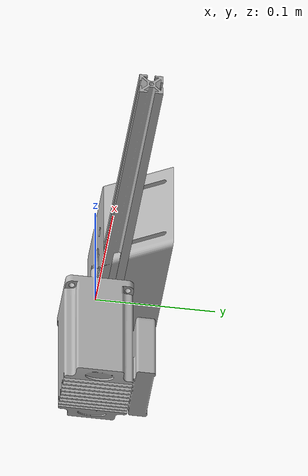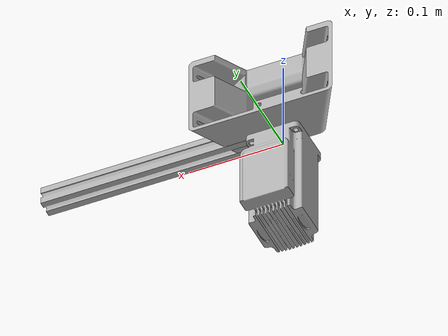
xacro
<?xml version="1.0" ?>
<robot name="ow_bot" xmlns:xacro="http://www.ros.org/wiki/xacro">

<xacro:include filename="$(find ow_bot)/description/materials.xacro" />
<xacro:include filename="$(find ow_bot)/description/ow_bot.trans" />
<xacro:include filename="$(find ow_bot)/description/ow_bot.gazebo" />
<link name="base_link">
  <!--cd -->
  <visual>
    <origin xyz="0 0 10000" rpy="0 0 0"/>
    <geometry>
      <mesh filename="file://$(find ow_bot)/meshes/base_link.stl" scale="0.001 0.001 0.001"/>
    </geometry>
    <material name="silver"/>
  </visual>
  <collision>
    <origin xyz="0 0 1000" rpy="0 0 0"/>
    <geometry>
      <box size="300 300 300"/>
     </geometry>

  </collision>
</link>

<link name="perfil_ts">
  <inertial>
    <origin xyz="-3.552713678800501e-17 -4.759991029112953e-07 -0.010000000278323328" rpy="0 0 0"/>
    <mass value="0.1245226402427353"/>
    <inertia ixx="1e-05" iyy="0.000654" izz="0.000654" ixy="0.0" iyz="-0.0" ixz="0.0"/>
  </inertial>
  <visual>
    <origin xyz="0.0 0.120232 -0.0" rpy="0 0 0"/>
    <geometry>
      <mesh filename="file://$(find ow_bot)/meshes/perfil.stl" scale="0.001 0.001 0.001"/>
    </geometry>
    <material name="silver"/>
  </visual>
  <collision>
    <origin xyz="0.0 0.120232 -0.0" rpy="0 0 0"/>
    <geometry>
      <mesh filename="file://$(find ow_bot)/meshes/perfil.stl" scale="0.001 0.001 0.001"/>
    </geometry>
  </collision>
</link>

<link name="perfil_ds">
  <inertial>
    <origin xyz="3.7818338929906936e-07 2.377733820946304e-07 -0.010000000278323328" rpy="0 0 0"/>
    <mass value="0.1245226402427353"/>
    <inertia ixx="0.000493" iyy="0.000171" izz="0.000654" ixy="0.000279" iyz="-0.0" ixz="0.0"/>
  </inertial>
  <visual>
    <origin xyz="-0.104124 -0.060116 -0.0" rpy="0 0 0"/>
    <geometry>
      <mesh filename="file://$(find ow_bot)/meshes/perfil.stl" scale="0.001 0.001 0.001"/>
    </geometry>
    <material name="silver"/>
  </visual>
  <collision>
    <origin xyz="-0.104124 -0.060116 -0.0" rpy="0 0 0"/>
    <geometry>
      <mesh filename="file://$(find ow_bot)/meshes/perfil.stl" scale="0.001 0.001 0.001"/>
    </geometry>
  </collision>
</link>

<link name="perfil_is">
  <inertial>
    <origin xyz="-3.785751259421932e-07 2.3799955143483098e-07 -0.010000000278323328" rpy="0 0 0"/>
    <mass value="0.1245226402427353"/>
    <inertia ixx="0.000493" iyy="0.000171" izz="0.000654" ixy="-0.000279" iyz="-0.0" ixz="0.0"/>
  </inertial>
  <visual>
    <origin xyz="0.104124 -0.060116 -0.0" rpy="0 0 0"/>
    <geometry>
      <mesh filename="file://$(find ow_bot)/meshes/perfil.stl" scale="0.001 0.001 0.001"/>
    </geometry>
    <material name="silver"/>
  </visual>
  <collision>
    <origin xyz="0.104124 -0.060116 -0.0" rpy="0 0 0"/>
    <geometry>
      <mesh filename="file://$(find ow_bot)/meshes/perfil.stl" scale="0.001 0.001 0.001"/>
    </geometry>
  </collision>
</link>

<link name="perfil_ti">
  <inertial>
    <origin xyz="-3.552713678800501e-17 -4.759991029112953e-07 -0.06890000027832334" rpy="0 0 0"/>
    <mass value="0.1245226402427353"/>
    <inertia ixx="1e-05" iyy="0.000654" izz="0.000654" ixy="0.0" iyz="0.0" ixz="0.0"/>
  </inertial>
  <visual>
    <origin xyz="0.0 0.120232 -0.0" rpy="0 0 0"/>
    <geometry>
      <mesh filename="file://$(find ow_bot)/meshes/perfil.stl" scale="0.001 0.001 0.001"/>
    </geometry>
    <material name="silver"/>
  </visual>
  <collision>
    <origin xyz="0.0 0.120232 -0.0" rpy="0 0 0"/>
    <geometry>
      <mesh filename="file://$(find ow_bot)/meshes/perfil.stl" scale="0.001 0.001 0.001"/>
    </geometry>
  </collision>
</link>

<link name="perfil_di">
  <inertial>
    <origin xyz="3.7818338929906936e-07 2.377733820946304e-07 -0.06890000027832334" rpy="0 0 0"/>
    <mass value="0.1245226402427353"/>
    <inertia ixx="0.000493" iyy="0.000171" izz="0.000654" ixy="0.000279" iyz="0.0" ixz="0.0"/>
  </inertial>
  <visual>
    <origin xyz="-0.104124 -0.060116 -0.0" rpy="0 0 0"/>
    <geometry>
      <mesh filename="file://$(find ow_bot)/meshes/perfil.stl" scale="0.001 0.001 0.001"/>
    </geometry>
    <material name="silver"/>
  </visual>
  <collision>
    <origin xyz="-0.104124 -0.060116 -0.0" rpy="0 0 0"/>
    <geometry>
      <mesh filename="file://$(find ow_bot)/meshes/perfil.stl" scale="0.001 0.001 0.001"/>
    </geometry>
  </collision>
</link>

<link name="perfil_ii">
  <inertial>
    <origin xyz="-3.785751259421932e-07 2.3799955143483098e-07 -0.06890000027832334" rpy="0 0 0"/>
    <mass value="0.1245226402427353"/>
    <inertia ixx="0.000493" iyy="0.000171" izz="0.000654" ixy="-0.000279" iyz="-0.0" ixz="-0.0"/>
  </inertial>
  <visual>
    <origin xyz="0.104124 -0.060116 -0.0" rpy="0 0 0"/>
    <geometry>
      <mesh filename="file://$(find ow_bot)/meshes/perfil.stl" scale="0.001 0.001 0.001"/>
    </geometry>
    <material name="silver"/>
  </visual>
  <collision>
    <origin xyz="0.104124 -0.060116 -0.0" rpy="0 0 0"/>
    <geometry>
      <mesh filename="file://$(find ow_bot)/meshes/perfil.stl" scale="0.001 0.001 0.001"/>
    </geometry>
  </collision>
</link>

<link name="esquina_izq">
  <inertial>
    <origin xyz="-0.13623310759578422 -0.4254929058915987 -0.007018873971046356" rpy="0 0 0"/>
    <mass value="0.2287051948439656"/>
    <inertia ixx="0.000507" iyy="0.00032" izz="0.000493" ixy="0.000162" iyz="7e-06" ixz="1.2e-05"/>
  </inertial>
  <visual>
    <origin xyz="0.00866 -0.341739 0.03" rpy="0 0 0"/>
    <geometry>
      <mesh filename="file://$(find ow_bot)/meshes/esquina.stl" scale="0.001 0.001 0.001"/>
    </geometry>
    <material name="silver"/>
  </visual>
  <collision>
    <origin xyz="0.00866 -0.341739 0.03" rpy="0 0 0"/>
    <geometry>
      <mesh filename="file://$(find ow_bot)/meshes/esquina.stl" scale="0.001 0.001 0.001"/>
    </geometry>
  </collision>
</link>

<link name="esquina_der">
  <inertial>
    <origin xyz="0.14497956396618764 0.16686084093457815 -0.007018873971046356" rpy="0 0 0"/>
    <mass value="0.2287051948439656"/>
    <inertia ixx="0.000507" iyy="0.00032" izz="0.000493" ixy="-0.000162" iyz="7e-06" ixz="-1.2e-05"/>
  </inertial>
  <visual>
    <origin xyz="0.0 0.250465 0.03" rpy="0 0 0"/>
    <geometry>
      <mesh filename="file://$(find ow_bot)/meshes/esquina.stl" scale="0.001 0.001 0.001"/>
    </geometry>
    <material name="silver"/>
  </visual>
  <collision>
    <origin xyz="0.0 0.250465 0.03" rpy="0 0 0"/>
    <geometry>
      <mesh filename="file://$(find ow_bot)/meshes/esquina.stl" scale="0.001 0.001 0.001"/>
    </geometry>
  </collision>
</link>

<link name="esquina_front">
  <inertial>
    <origin xyz="-0.19967545637040346 -0.04414793504297959 -0.007018873971046356" rpy="0 0 0"/>
    <mass value="0.2287051948439656"/>
    <inertia ixx="0.000226" iyy="0.000601" izz="0.000493" ixy="-0.0" iyz="-1.3e-05" ixz="0.0"/>
  </inertial>
  <visual>
    <origin xyz="-0.199589 -0.211506 0.03" rpy="0 0 0"/>
    <geometry>
      <mesh filename="file://$(find ow_bot)/meshes/esquina.stl" scale="0.001 0.001 0.001"/>
    </geometry>
    <material name="silver"/>
  </visual>
  <collision>
    <origin xyz="-0.199589 -0.211506 0.03" rpy="0 0 0"/>
    <geometry>
      <mesh filename="file://$(find ow_bot)/meshes/esquina.stl" scale="0.001 0.001 0.001"/>
    </geometry>
  </collision>
</link>

<link name="servo_izq">
  <inertial>
    <origin xyz="0.05947146702390413 0.007145019629350158 -0.017998152129648507" rpy="0 0 0"/>
    <mass value="0.37770787245337206"/>
    <inertia ixx="0.000303" iyy="0.000431" izz="0.000439" ixy="-0.000111" iyz="-1.4e-05" ixz="-2.5e-05"/>
  </inertial>
  <visual>
    <origin xyz="0.171378 0.071909 0.028" rpy="0 0 0"/>
    <geometry>
      <mesh filename="file://$(find ow_bot)/meshes/servo.stl" scale="0.001 0.001 0.001"/>
    </geometry>
    <material name="silver"/>
  </visual>
  <collision>
    <origin xyz="0.171378 0.071909 0.028" rpy="0 0 0"/>
    <geometry>
      <mesh filename="file://$(find ow_bot)/meshes/servo.stl" scale="0.001 0.001 0.001"/>
    </geometry>
  </collision>
</link>

<link name="servo_der">
  <inertial>
    <origin xyz="-0.03592348126077266 0.04793108977858487 -0.01799815212964848" rpy="0 0 0"/>
    <mass value="0.37770787245337206"/>
    <inertia ixx="0.000303" iyy="0.000432" izz="0.000439" ixy="0.000111" iyz="-1.4e-05" ixz="2.5e-05"/>
  </inertial>
  <visual>
    <origin xyz="-0.147964 0.112463 0.028" rpy="0 0 0"/>
    <geometry>
      <mesh filename="file://$(find ow_bot)/meshes/servo.stl" scale="0.001 0.001 0.001"/>
    </geometry>
    <material name="silver"/>
  </visual>
  <collision>
    <origin xyz="-0.147964 0.112463 0.028" rpy="0 0 0"/>
    <geometry>
      <mesh filename="file://$(find ow_bot)/meshes/servo.stl" scale="0.001 0.001 0.001"/>
    </geometry>
  </collision>
</link>

<link name="servo_front">
  <inertial>
    <origin xyz="-0.023547985763131538 -0.05507610940793514 -0.01799815212964848" rpy="0 0 0"/>
    <mass value="0.37770787245337206"/>
    <inertia ixx="0.000496" iyy="0.000239" izz="0.000439" ixy="0.0" iyz="2.9e-05" ixz="-0.0"/>
  </inertial>
  <visual>
    <origin xyz="-0.023414 -0.184372 0.028" rpy="0 0 0"/>
    <geometry>
      <mesh filename="file://$(find ow_bot)/meshes/servo.stl" scale="0.001 0.001 0.001"/>
    </geometry>
    <material name="silver"/>
  </visual>
  <collision>
    <origin xyz="-0.023414 -0.184372 0.028" rpy="0 0 0"/>
    <geometry>
      <mesh filename="file://$(find ow_bot)/meshes/servo.stl" scale="0.001 0.001 0.001"/>
    </geometry>
  </collision>
</link>

<joint name="perfil_ts_joint" type="fixed">
  <origin xyz="0.0 -0.120232 0.0" rpy="0 0 0"/>
  <parent link="base_link"/>
  <child link="perfil_ts"/>
</joint>

<joint name="perfil_ds_joint" type="fixed">
  <origin xyz="0.104124 0.060116 0.0" rpy="0 0 0"/>
  <parent link="base_link"/>
  <child link="perfil_ds"/>
</joint>

<joint name="perfil_is_joint" type="fixed">
  <origin xyz="-0.104124 0.060116 0.0" rpy="0 0 0"/>
  <parent link="base_link"/>
  <child link="perfil_is"/>
</joint>

<joint name="perfil_ti_joint" type="fixed">
  <origin xyz="0.0 -0.120232 0.0" rpy="0 0 0"/>
  <parent link="base_link"/>
  <child link="perfil_ti"/>
</joint>

<joint name="perfil_di_joint" type="fixed">
  <origin xyz="0.104124 0.060116 0.0" rpy="0 0 0"/>
  <parent link="base_link"/>
  <child link="perfil_di"/>
</joint>

<joint name="perfil_ii_joint" type="fixed">
  <origin xyz="-0.104124 0.060116 0.0" rpy="0 0 0"/>
  <parent link="base_link"/>
  <child link="perfil_ii"/>
</joint>

<joint name="esquina_izq_joint" type="fixed">
  <origin xyz="0.095464 0.281623 -0.03" rpy="0 0 0"/>
  <parent link="perfil_is"/>
  <child link="esquina_izq"/>
</joint>

<joint name="esquina_der_joint" type="fixed">
  <origin xyz="0.0 -0.130233 -0.03" rpy="0 0 0"/>
  <parent link="perfil_ts"/>
  <child link="esquina_der"/>
</joint>

<joint name="esquina_front_joint" type="fixed">
  <origin xyz="0.095465 0.15139 -0.03" rpy="0 0 0"/>
  <parent link="perfil_ds"/>
  <child link="esquina_front"/>
</joint>

<joint name="servo_izq_joint" type="fixed">
  <origin xyz="-0.162718 -0.413648 0.002" rpy="0 0 0"/>
  <parent link="esquina_izq"/>
  <child link="servo_izq"/>
</joint>

<joint name="servo_der_joint" type="fixed">
  <origin xyz="0.147964 0.138002 0.002" rpy="0 0 0"/>
  <parent link="esquina_der"/>
  <child link="servo_der"/>
</joint>

<joint name="servo_front_joint" type="fixed">
  <origin xyz="-0.176175 -0.027134 0.002" rpy="0 0 0"/>
  <parent link="esquina_front"/>
  <child link="servo_front"/>
</joint>

</robot>

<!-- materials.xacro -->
<robot name="ow_bot" xmlns:xacro="http://www.ros.org/wiki/xacro" >

<material name="silver">
  <color rgba="0.700 0.700 0.700 1.000"/>
</material>

</robot>

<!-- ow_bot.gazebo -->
<robot name="ow_bot" xmlns:xacro="http://www.ros.org/wiki/xacro" >

<xacro:property name="body_color" value="Gazebo/Silver" />

<gazebo>
  <plugin name="control" filename="libgazebo_ros_control.so"/>
</gazebo>
<gazebo reference="base_link">
  <material>${body_color}</material>
  <mu1>0.2</mu1>
  <mu2>0.2</mu2>
  <self_collide>true</self_collide>
  <gravity>true</gravity>
</gazebo>

<gazebo reference="perfil_ts">
  <material>${body_color}</material>
  <mu1>0.2</mu1>
  <mu2>0.2</mu2>
  <self_collide>true</self_collide>
</gazebo>

<gazebo reference="perfil_ds">
  <material>${body_color}</material>
  <mu1>0.2</mu1>
  <mu2>0.2</mu2>
  <self_collide>true</self_collide>
</gazebo>

<gazebo reference="perfil_is">
  <material>${body_color}</material>
  <mu1>0.2</mu1>
  <mu2>0.2</mu2>
  <self_collide>true</self_collide>
</gazebo>

<gazebo reference="perfil_ti">
  <material>${body_color}</material>
  <mu1>0.2</mu1>
  <mu2>0.2</mu2>
  <self_collide>true</self_collide>
</gazebo>

<gazebo reference="perfil_di">
  <material>${body_color}</material>
  <mu1>0.2</mu1>
  <mu2>0.2</mu2>
  <self_collide>true</self_collide>
</gazebo>

<gazebo reference="perfil_ii">
  <material>${body_color}</material>
  <mu1>0.2</mu1>
  <mu2>0.2</mu2>
  <self_collide>true</self_collide>
</gazebo>

<gazebo reference="esquina_izq">
  <material>${body_color}</material>
  <mu1>0.2</mu1>
  <mu2>0.2</mu2>
  <self_collide>true</self_collide>
</gazebo>

<gazebo reference="esquina_der">
  <material>${body_color}</material>
  <mu1>0.2</mu1>
  <mu2>0.2</mu2>
  <self_collide>true</self_collide>
</gazebo>

<gazebo reference="esquina_front">
  <material>${body_color}</material>
  <mu1>0.2</mu1>
  <mu2>0.2</mu2>
  <self_collide>true</self_collide>
</gazebo>

<gazebo reference="servo_izq">
  <material>${body_color}</material>
  <mu1>0.2</mu1>
  <mu2>0.2</mu2>
  <self_collide>true</self_collide>
</gazebo>

<gazebo reference="servo_der">
  <material>${body_color}</material>
  <mu1>0.2</mu1>
  <mu2>0.2</mu2>
  <self_collide>true</self_collide>
</gazebo>

<gazebo reference="servo_front">
  <material>${body_color}</material>
  <mu1>0.2</mu1>
  <mu2>0.2</mu2>
  <self_collide>true</self_collide>
</gazebo>

</robot>
